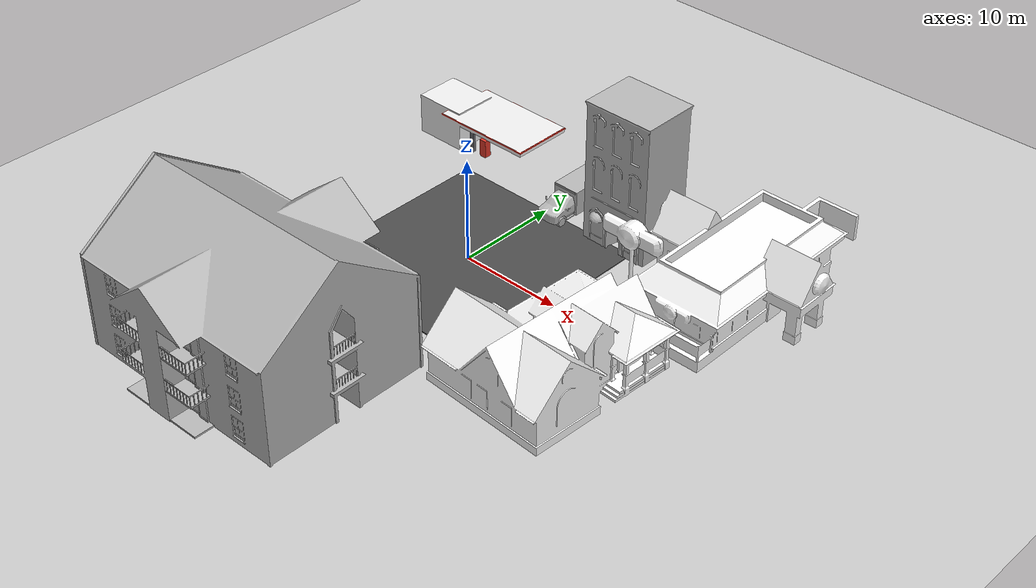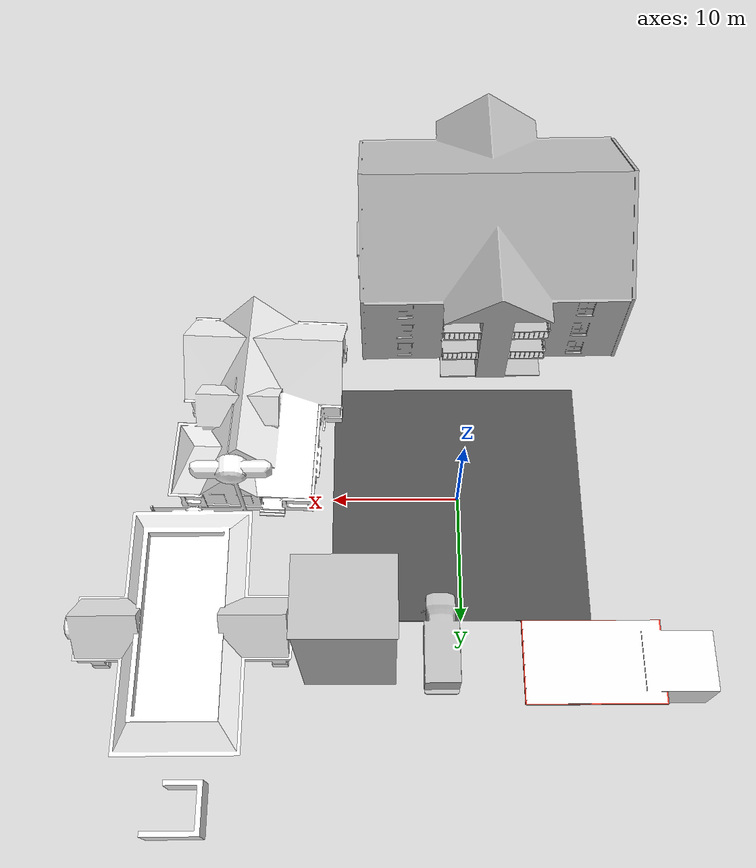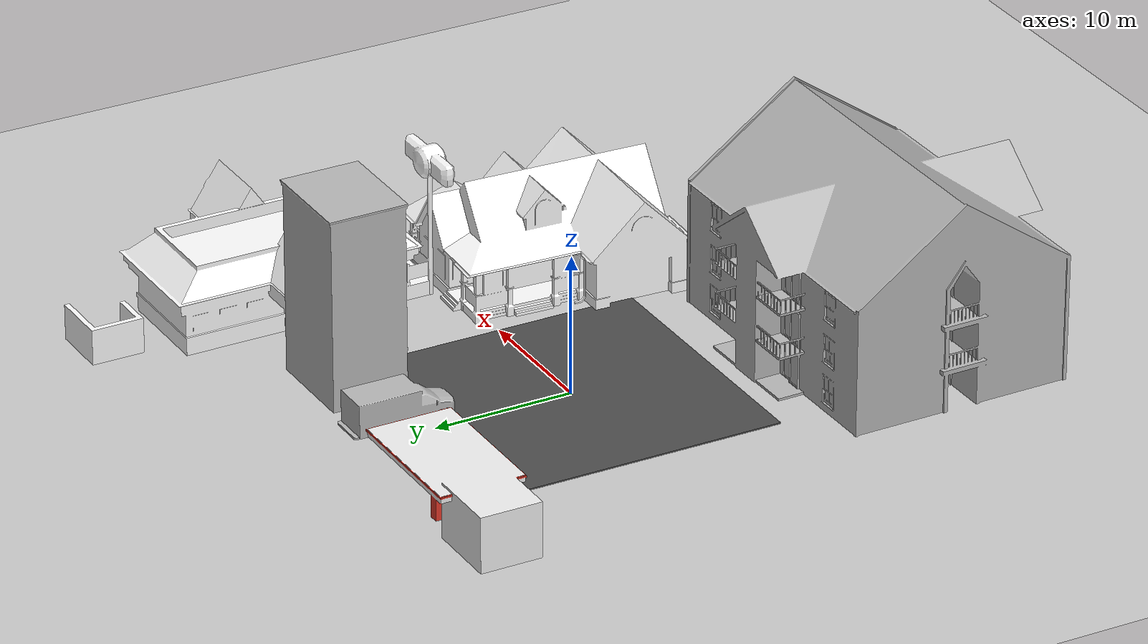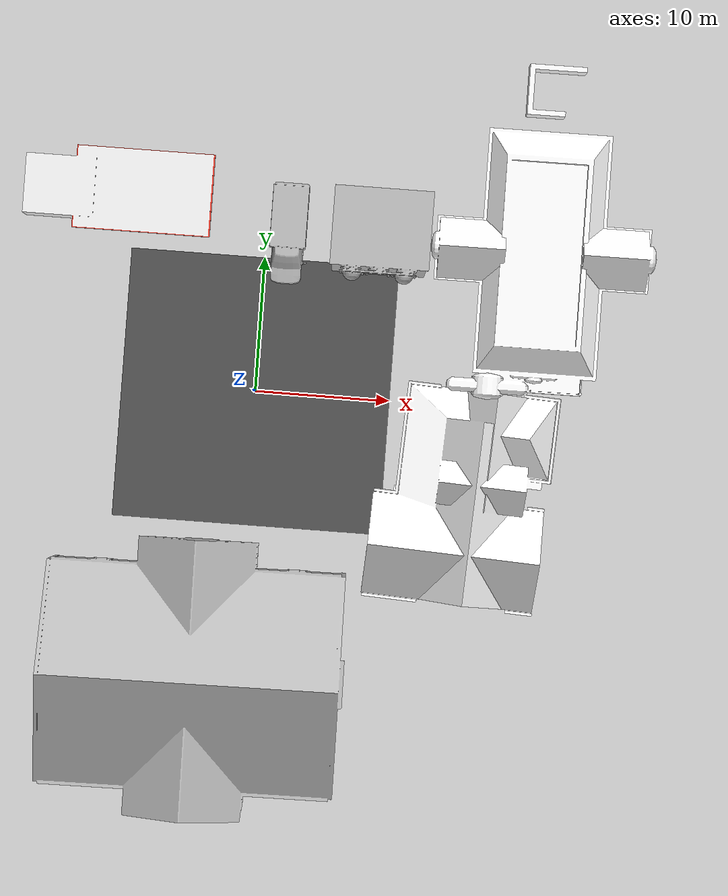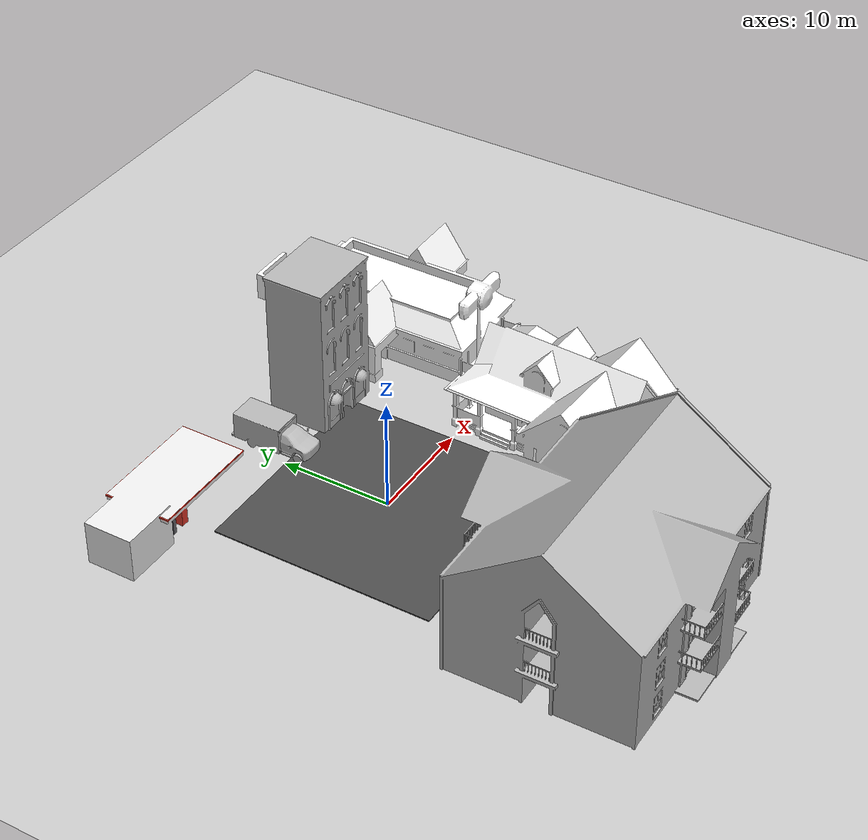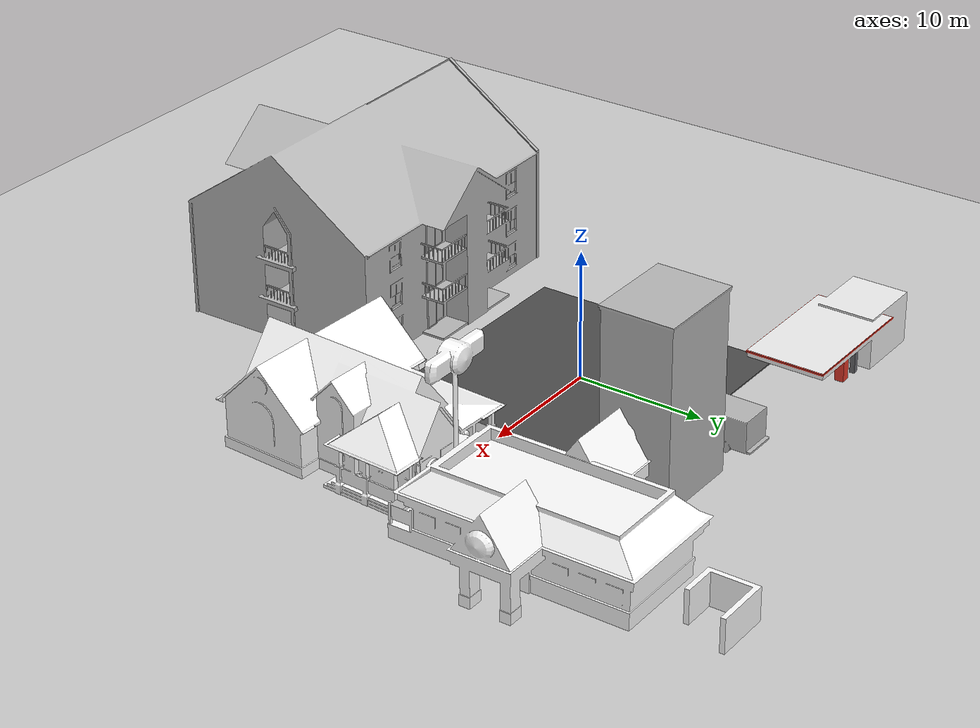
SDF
<sdf version="1.7">
 <world name="default">
  <light name="sun" type="directional">
   <pose>0 0 10 0 -0 0</pose>
   <diffuse>0.8 0.8 0.8 1</diffuse>
   <specular>0.2 0.2 0.2 1</specular>
   <attenuation>
    <range>1000</range>
    <constant>0.9</constant>
    <linear>0.01</linear>
    <quadratic>0.001</quadratic>
   </attenuation>
   <direction>-0.5 0.1 -0.9</direction>
   <spot><inner_angle>0</inner_angle><outer_angle>0</outer_angle><falloff>0</falloff></spot>
  </light>
  <model name="ground_plane">
   <static>1</static>
   <link name="link">
    <collision name="collision">
     <geometry><plane><normal>0 0 1</normal><size>100 100</size></plane></geometry>
     <surface>
      <contact><collide_bitmask>65535</collide_bitmask></contact>
      <friction><ode><mu>100</mu><mu2>50</mu2></ode></friction>
     </surface>
    </collision>
    <visual name="visual">
     <cast_shadows>0</cast_shadows>
     <geometry><plane><normal>0 0 1</normal><size>100 100</size></plane></geometry>
     <material>
      <script><uri>file://media/materials/scripts/gazebo.material</uri><name>Gazebo/Grey</name></script>
     </material>
    </visual>
   </link>
  </model>
  <model name="asphalt_plane">
   <static>1</static>
   <link name="link">
    <collision name="collision"><geometry><box><size>20 20 0.1</size></box></geometry></collision>
    <visual name="visual">
     <cast_shadows>0</cast_shadows>
     <geometry><box><size>20 20 0.1</size></box></geometry>
     <material>
      <script>
       <uri>model://asphalt_plane/materials/scripts</uri>
       <uri>model://asphalt_plane/materials/textures</uri>
       <name>vrc/asphalt</name>
      </script>
     </material>
    </visual>
   </link>
  </model>
  <physics name="default_physics" default="0" type="ode">
   <ode>
    <solver>
     <type>quick</type>
     <iters>10</iters>
     <sor>1.3</sor>
     <use_dynamic_moi_rescaling>0</use_dynamic_moi_rescaling>
    </solver>
    <constraints>
     <cfm>0</cfm>
     <erp>0.2</erp>
     <contact_max_correcting_vel>100</contact_max_correcting_vel>
     <contact_surface_layer>0.001</contact_surface_layer>
    </constraints>
   </ode>
   <max_step_size>0.004</max_step_size>
   <real_time_factor>1</real_time_factor>
   <real_time_update_rate>250</real_time_update_rate>
  </physics>
  <gravity>0 0 -9.8066</gravity>
  <magnetic_field>6e-06 2.3e-05 -4.2e-05</magnetic_field>
  <atmosphere type="adiabatic"/>
  <scene><ambient>0.4 0.4 0.4 1</ambient><background>0.7 0.7 0.7 1</background><shadows>1</shadows></scene>
  <spherical_coordinates>
   <surface_model>EARTH_WGS84</surface_model>
   <latitude_deg>0</latitude_deg>
   <longitude_deg>0</longitude_deg>
   <elevation>0</elevation>
   <heading_deg>0</heading_deg>
  </spherical_coordinates>
  <model name="ambulance">
   <static>1</static>
   <link name="link">
    <collision name="collision">
     <geometry>
      <mesh><scale>0.0254 0.0254 0.0254</scale><uri>model://ambulance/meshes/ambulance.obj</uri></mesh>
     </geometry>
    </collision>
    <visual name="visual">
     <geometry>
      <mesh><scale>0.0254 0.0254 0.0254</scale><uri>model://ambulance/meshes/ambulance.obj</uri></mesh>
     </geometry>
    </visual>
   </link>
   <pose>1.6068 12 0 0 -0 0</pose>
  </model>
  <model name="Gas Station">
   <static>1</static>
   <link name="link">
    <collision name="collision">
     <geometry><mesh><uri>model://gas_station/meshes/gas_station.dae</uri></mesh></geometry>
    </collision>
    <visual name="visual">
     <geometry><mesh><uri>model://gas_station/meshes/gas_station.dae</uri></mesh></geometry>
     <material>
      <script>
       <uri>model://gas_station/materials/scripts</uri>
       <uri>model://gas_station/materials/textures</uri>
       <name>GasStation/Diffuse</name>
      </script>
      <shader type="normal_map_tangent_space"><normal_map>GasStation_Normal.png</normal_map></shader>
     </material>
    </visual>
   </link>
   <pose>-11.6429 14.0704 0 0 -0 0</pose>
  </model>
  <model name="law_office">
   <static>1</static>
   <link name="link">
    <collision name="collision">
     <pose>0 0 6.96244 0 -0 0</pose>
     <geometry><box><size>6.84401 5.43165 13.9249</size></box></geometry>
    </collision>
    <visual name="visual">
     <geometry><mesh><uri>model://law_office/meshes/law_office.dae</uri></mesh></geometry>
    </visual>
   </link>
   <pose>8.44246 12.1209 0 0 -0 0</pose>
  </model>
  <model name="House 1">
   <static>1</static>
   <link name="link">
    <collision name="collision">
     <geometry><mesh><uri>model://house_1/meshes/house_1.dae</uri><scale>1.5 1.5 1.5</scale></mesh></geometry>
    </collision>
    <visual name="visual">
     <geometry><mesh><uri>model://house_1/meshes/house_1.dae</uri><scale>1.5 1.5 1.5</scale></mesh></geometry>
     <material>
      <script>
       <uri>model://house_1/materials/scripts</uri>
       <uri>model://house_1/materials/textures</uri>
       <name>House_1/Diffuse</name>
      </script>
      <shader type="normal_map_tangent_space"><normal_map>House_1_Normal.png</normal_map></shader>
     </material>
    </visual>
   </link>
   <pose>16.131 -6.96051 0 -0.001228 -0 -1.61867</pose>
  </model>
  <model name="apartment">
   <static>1</static>
   <link name="link">
    <collision name="collision">
     <geometry><mesh><uri>model://apartment/meshes/apartment.dae</uri></mesh></geometry>
    </collision>
    <visual name="visual">
     <geometry><mesh><uri>model://apartment/meshes/apartment.dae</uri></mesh></geometry>
    </visual>
   </link>
   <pose>-3.01307 -21.2288 0 0 -0 1.58289</pose>
  </model>
  <model name="Fast Food">
   <static>1</static>
   <link name="link">
    <pose>0 0 3.15931 0 -0 0</pose>
    <collision name="collision">
     <geometry><mesh><scale>3 3 2</scale><uri>model://fast_food/meshes/fast_food.dae</uri></mesh></geometry>
    </collision>
    <visual name="visual">
     <geometry><mesh><scale>3 3 2</scale><uri>model://fast_food/meshes/fast_food.dae</uri></mesh></geometry>
     <material>
      <script>
       <uri>model://fast_food/materials/scripts</uri>
       <uri>model://fast_food/materials/textures</uri>
       <name>FastFood/Diffuse</name>
      </script>
      <shader type="normal_map_tangent_space"><normal_map>FastFood_Normal.png</normal_map></shader>
     </material>
    </visual>
   </link>
   <pose>20.4361 11.591 0 0 0 -1.56701</pose>
  </model>
 </world>
</sdf>
